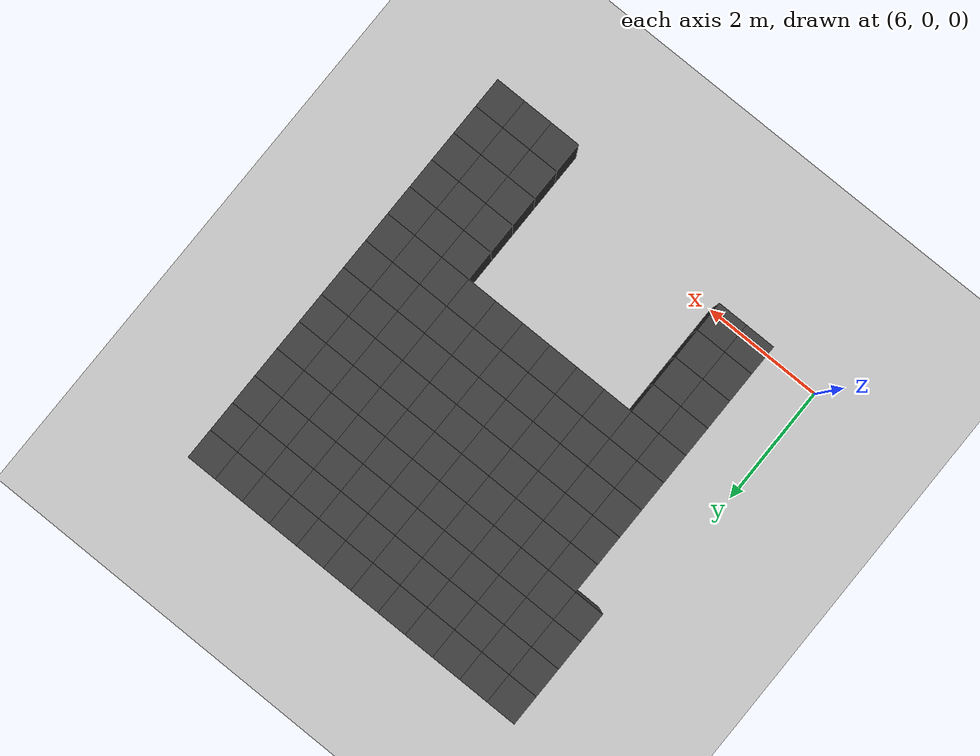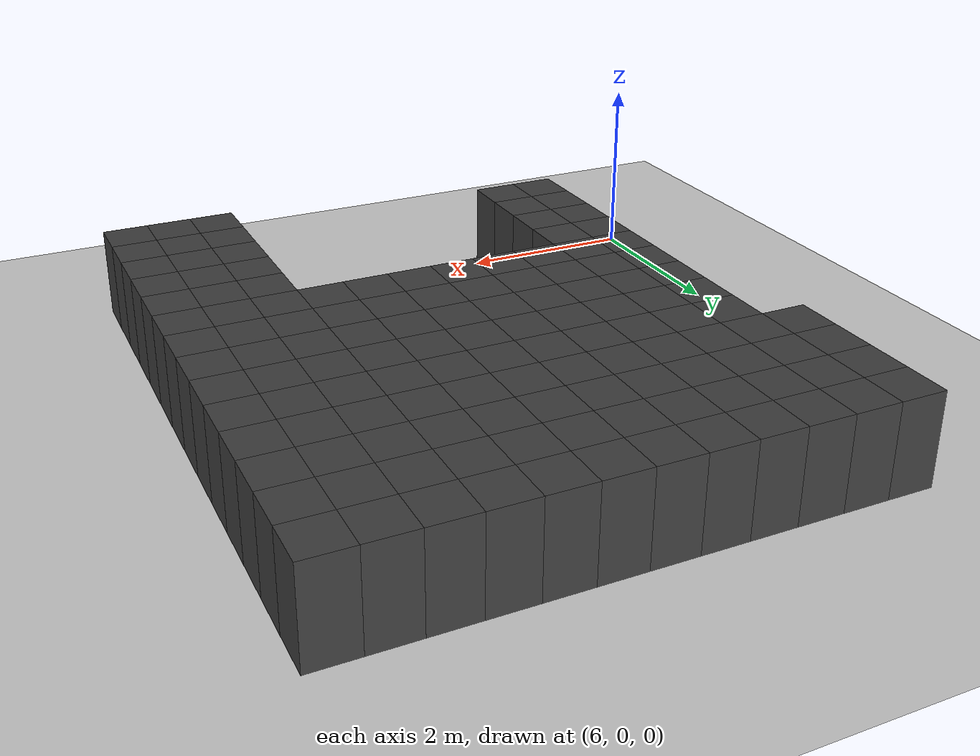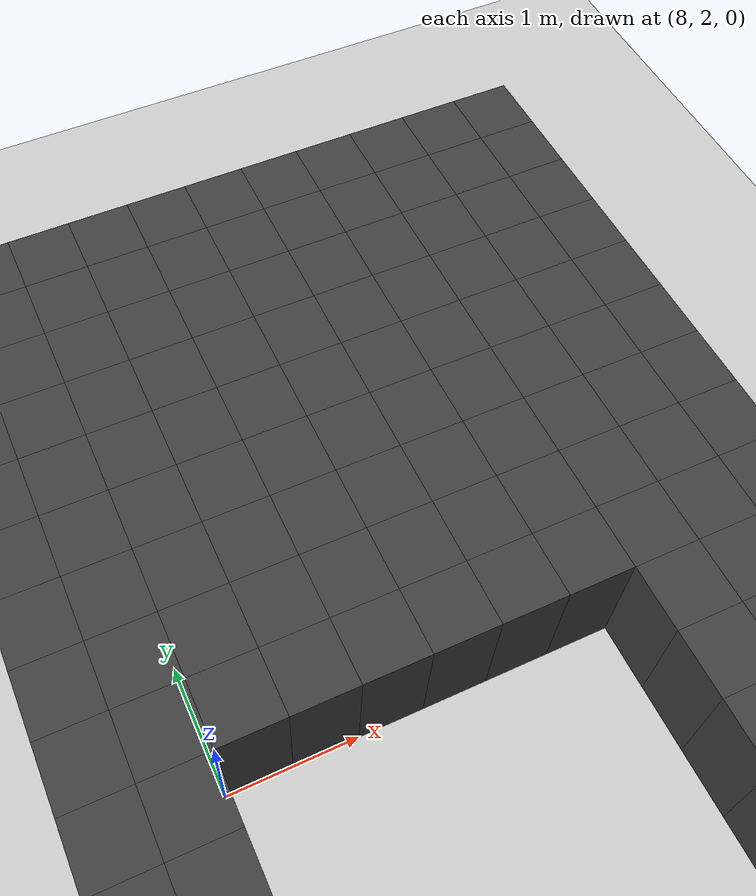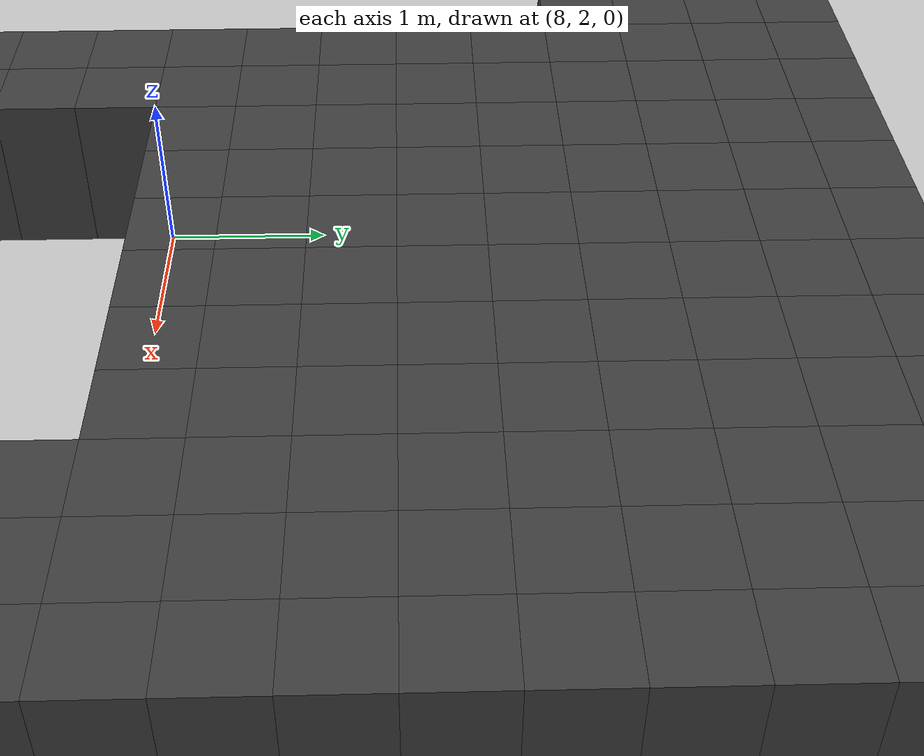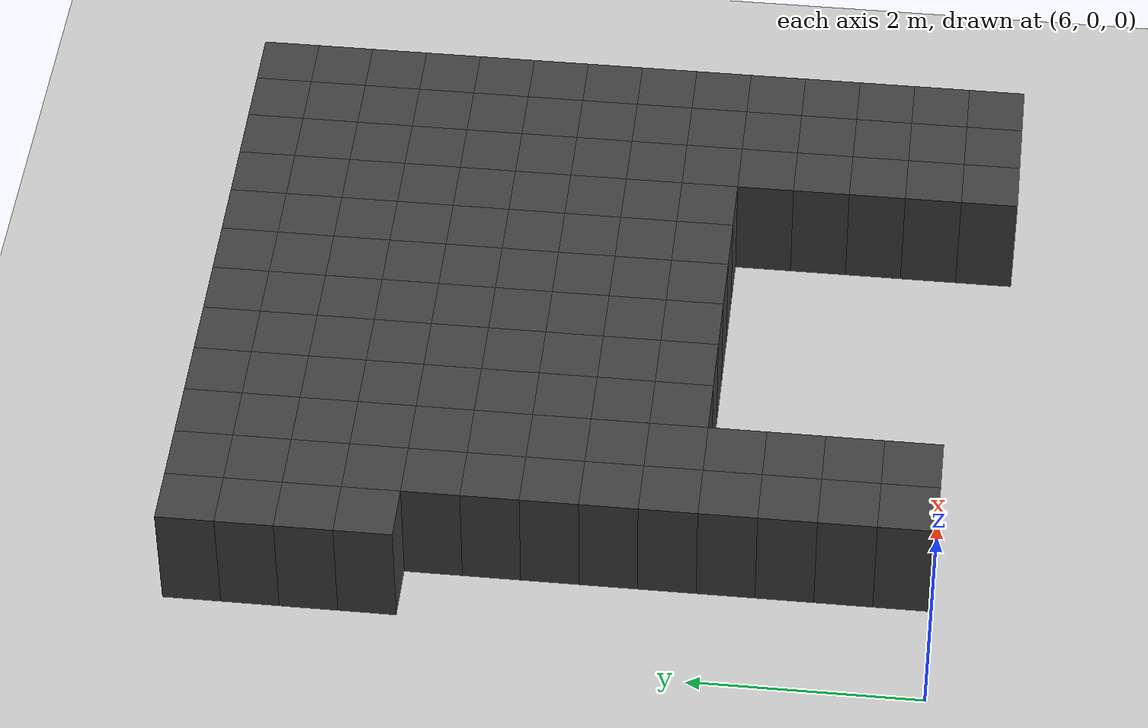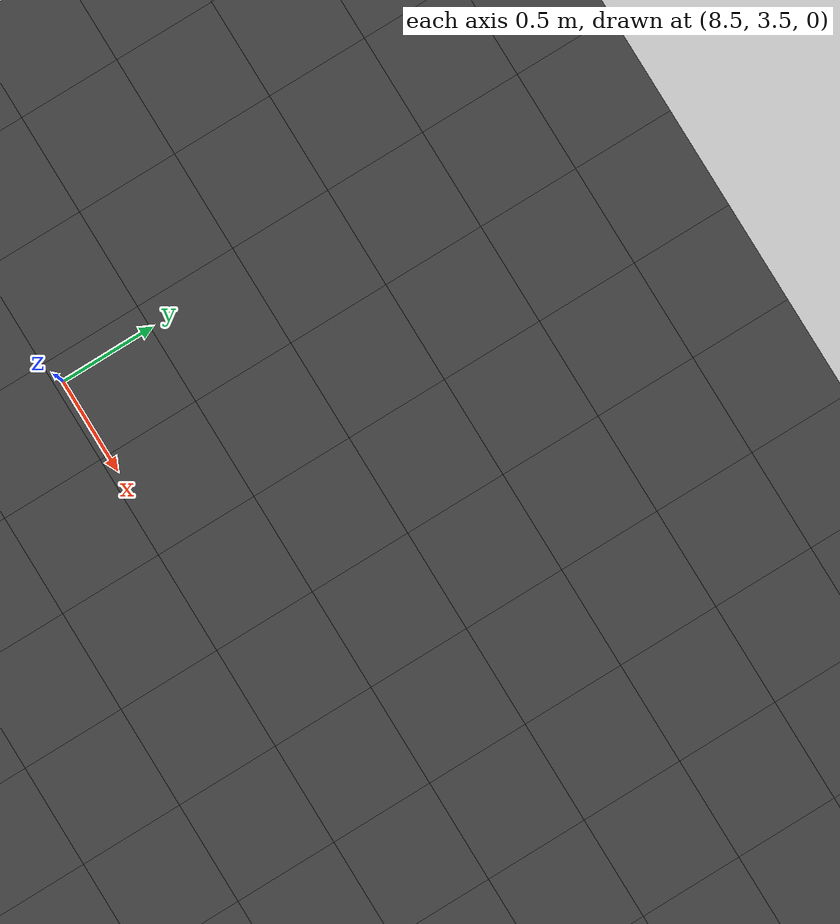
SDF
<sdf version="1.7">
 <world name="map_14495">
  <model name="ground_plane">
   <static>true</static>
   <link name="link">
    <collision name="collision">
     <geometry><plane><normal>0 0 1</normal><size>200 200</size></plane></geometry>
    </collision>
    <visual name="visual">
     <geometry><plane><normal>0 0 1</normal><size>200 200</size></plane></geometry>
     <material><ambient>0.8 0.8 0.8 1</ambient><diffuse>0.8 0.8 0.8 1</diffuse></material>
    </visual>
   </link>
  </model>
  <model name="maze_environment">
   <static>true</static>
   <link name="wall_487">
    <pose>6.750 6.250 0.500 0 0 0</pose>
    <collision name="col"><geometry><box><size>0.5 0.5 1.0</size></box></geometry></collision>
    <visual name="vis">
     <geometry><box><size>0.5 0.5 1.0</size></box></geometry>
     <material><ambient>0.15 0.15 0.15 1</ambient><diffuse>0.25 0.25 0.25 1</diffuse></material>
    </visual>
   </link>
   <link name="wall_488">
    <pose>7.250 6.250 0.500 0 0 0</pose>
    <collision name="col"><geometry><box><size>0.5 0.5 1.0</size></box></geometry></collision>
    <visual name="vis">
     <geometry><box><size>0.5 0.5 1.0</size></box></geometry>
     <material><ambient>0.15 0.15 0.15 1</ambient><diffuse>0.25 0.25 0.25 1</diffuse></material>
    </visual>
   </link>
   <link name="wall_489">
    <pose>7.750 6.250 0.500 0 0 0</pose>
    <collision name="col"><geometry><box><size>0.5 0.5 1.0</size></box></geometry></collision>
    <visual name="vis">
     <geometry><box><size>0.5 0.5 1.0</size></box></geometry>
     <material><ambient>0.15 0.15 0.15 1</ambient><diffuse>0.25 0.25 0.25 1</diffuse></material>
    </visual>
   </link>
   <link name="wall_490">
    <pose>8.250 6.250 0.500 0 0 0</pose>
    <collision name="col"><geometry><box><size>0.5 0.5 1.0</size></box></geometry></collision>
    <visual name="vis">
     <geometry><box><size>0.5 0.5 1.0</size></box></geometry>
     <material><ambient>0.15 0.15 0.15 1</ambient><diffuse>0.25 0.25 0.25 1</diffuse></material>
    </visual>
   </link>
   <link name="wall_491">
    <pose>8.750 6.250 0.500 0 0 0</pose>
    <collision name="col"><geometry><box><size>0.5 0.5 1.0</size></box></geometry></collision>
    <visual name="vis">
     <geometry><box><size>0.5 0.5 1.0</size></box></geometry>
     <material><ambient>0.15 0.15 0.15 1</ambient><diffuse>0.25 0.25 0.25 1</diffuse></material>
    </visual>
   </link>
   <link name="wall_492">
    <pose>9.250 6.250 0.500 0 0 0</pose>
    <collision name="col"><geometry><box><size>0.5 0.5 1.0</size></box></geometry></collision>
    <visual name="vis">
     <geometry><box><size>0.5 0.5 1.0</size></box></geometry>
     <material><ambient>0.15 0.15 0.15 1</ambient><diffuse>0.25 0.25 0.25 1</diffuse></material>
    </visual>
   </link>
   <link name="wall_493">
    <pose>9.750 6.250 0.500 0 0 0</pose>
    <collision name="col"><geometry><box><size>0.5 0.5 1.0</size></box></geometry></collision>
    <visual name="vis">
     <geometry><box><size>0.5 0.5 1.0</size></box></geometry>
     <material><ambient>0.15 0.15 0.15 1</ambient><diffuse>0.25 0.25 0.25 1</diffuse></material>
    </visual>
   </link>
   <link name="wall_494">
    <pose>10.250 6.250 0.500 0 0 0</pose>
    <collision name="col"><geometry><box><size>0.5 0.5 1.0</size></box></geometry></collision>
    <visual name="vis">
     <geometry><box><size>0.5 0.5 1.0</size></box></geometry>
     <material><ambient>0.15 0.15 0.15 1</ambient><diffuse>0.25 0.25 0.25 1</diffuse></material>
    </visual>
   </link>
   <link name="wall_495">
    <pose>10.750 6.250 0.500 0 0 0</pose>
    <collision name="col"><geometry><box><size>0.5 0.5 1.0</size></box></geometry></collision>
    <visual name="vis">
     <geometry><box><size>0.5 0.5 1.0</size></box></geometry>
     <material><ambient>0.15 0.15 0.15 1</ambient><diffuse>0.25 0.25 0.25 1</diffuse></material>
    </visual>
   </link>
   <link name="wall_496">
    <pose>11.250 6.250 0.500 0 0 0</pose>
    <collision name="col"><geometry><box><size>0.5 0.5 1.0</size></box></geometry></collision>
    <visual name="vis">
     <geometry><box><size>0.5 0.5 1.0</size></box></geometry>
     <material><ambient>0.15 0.15 0.15 1</ambient><diffuse>0.25 0.25 0.25 1</diffuse></material>
    </visual>
   </link>
   <link name="wall_497">
    <pose>11.750 6.250 0.500 0 0 0</pose>
    <collision name="col"><geometry><box><size>0.5 0.5 1.0</size></box></geometry></collision>
    <visual name="vis">
     <geometry><box><size>0.5 0.5 1.0</size></box></geometry>
     <material><ambient>0.15 0.15 0.15 1</ambient><diffuse>0.25 0.25 0.25 1</diffuse></material>
    </visual>
   </link>
   <link name="wall_498">
    <pose>12.250 6.250 0.500 0 0 0</pose>
    <collision name="col"><geometry><box><size>0.5 0.5 1.0</size></box></geometry></collision>
    <visual name="vis">
     <geometry><box><size>0.5 0.5 1.0</size></box></geometry>
     <material><ambient>0.15 0.15 0.15 1</ambient><diffuse>0.25 0.25 0.25 1</diffuse></material>
    </visual>
   </link>
   <link name="wall_517">
    <pose>6.750 5.750 0.500 0 0 0</pose>
    <collision name="col"><geometry><box><size>0.5 0.5 1.0</size></box></geometry></collision>
    <visual name="vis">
     <geometry><box><size>0.5 0.5 1.0</size></box></geometry>
     <material><ambient>0.15 0.15 0.15 1</ambient><diffuse>0.25 0.25 0.25 1</diffuse></material>
    </visual>
   </link>
   <link name="wall_518">
    <pose>7.250 5.750 0.500 0 0 0</pose>
    <collision name="col"><geometry><box><size>0.5 0.5 1.0</size></box></geometry></collision>
    <visual name="vis">
     <geometry><box><size>0.5 0.5 1.0</size></box></geometry>
     <material><ambient>0.15 0.15 0.15 1</ambient><diffuse>0.25 0.25 0.25 1</diffuse></material>
    </visual>
   </link>
   <link name="wall_519">
    <pose>7.750 5.750 0.500 0 0 0</pose>
    <collision name="col"><geometry><box><size>0.5 0.5 1.0</size></box></geometry></collision>
    <visual name="vis">
     <geometry><box><size>0.5 0.5 1.0</size></box></geometry>
     <material><ambient>0.15 0.15 0.15 1</ambient><diffuse>0.25 0.25 0.25 1</diffuse></material>
    </visual>
   </link>
   <link name="wall_520">
    <pose>8.250 5.750 0.500 0 0 0</pose>
    <collision name="col"><geometry><box><size>0.5 0.5 1.0</size></box></geometry></collision>
    <visual name="vis">
     <geometry><box><size>0.5 0.5 1.0</size></box></geometry>
     <material><ambient>0.15 0.15 0.15 1</ambient><diffuse>0.25 0.25 0.25 1</diffuse></material>
    </visual>
   </link>
   <link name="wall_521">
    <pose>8.750 5.750 0.500 0 0 0</pose>
    <collision name="col"><geometry><box><size>0.5 0.5 1.0</size></box></geometry></collision>
    <visual name="vis">
     <geometry><box><size>0.5 0.5 1.0</size></box></geometry>
     <material><ambient>0.15 0.15 0.15 1</ambient><diffuse>0.25 0.25 0.25 1</diffuse></material>
    </visual>
   </link>
   <link name="wall_522">
    <pose>9.250 5.750 0.500 0 0 0</pose>
    <collision name="col"><geometry><box><size>0.5 0.5 1.0</size></box></geometry></collision>
    <visual name="vis">
     <geometry><box><size>0.5 0.5 1.0</size></box></geometry>
     <material><ambient>0.15 0.15 0.15 1</ambient><diffuse>0.25 0.25 0.25 1</diffuse></material>
    </visual>
   </link>
   <link name="wall_523">
    <pose>9.750 5.750 0.500 0 0 0</pose>
    <collision name="col"><geometry><box><size>0.5 0.5 1.0</size></box></geometry></collision>
    <visual name="vis">
     <geometry><box><size>0.5 0.5 1.0</size></box></geometry>
     <material><ambient>0.15 0.15 0.15 1</ambient><diffuse>0.25 0.25 0.25 1</diffuse></material>
    </visual>
   </link>
   <link name="wall_524">
    <pose>10.250 5.750 0.500 0 0 0</pose>
    <collision name="col"><geometry><box><size>0.5 0.5 1.0</size></box></geometry></collision>
    <visual name="vis">
     <geometry><box><size>0.5 0.5 1.0</size></box></geometry>
     <material><ambient>0.15 0.15 0.15 1</ambient><diffuse>0.25 0.25 0.25 1</diffuse></material>
    </visual>
   </link>
   <link name="wall_525">
    <pose>10.750 5.750 0.500 0 0 0</pose>
    <collision name="col"><geometry><box><size>0.5 0.5 1.0</size></box></geometry></collision>
    <visual name="vis">
     <geometry><box><size>0.5 0.5 1.0</size></box></geometry>
     <material><ambient>0.15 0.15 0.15 1</ambient><diffuse>0.25 0.25 0.25 1</diffuse></material>
    </visual>
   </link>
   <link name="wall_526">
    <pose>11.250 5.750 0.500 0 0 0</pose>
    <collision name="col"><geometry><box><size>0.5 0.5 1.0</size></box></geometry></collision>
    <visual name="vis">
     <geometry><box><size>0.5 0.5 1.0</size></box></geometry>
     <material><ambient>0.15 0.15 0.15 1</ambient><diffuse>0.25 0.25 0.25 1</diffuse></material>
    </visual>
   </link>
   <link name="wall_527">
    <pose>11.750 5.750 0.500 0 0 0</pose>
    <collision name="col"><geometry><box><size>0.5 0.5 1.0</size></box></geometry></collision>
    <visual name="vis">
     <geometry><box><size>0.5 0.5 1.0</size></box></geometry>
     <material><ambient>0.15 0.15 0.15 1</ambient><diffuse>0.25 0.25 0.25 1</diffuse></material>
    </visual>
   </link>
   <link name="wall_528">
    <pose>12.250 5.750 0.500 0 0 0</pose>
    <collision name="col"><geometry><box><size>0.5 0.5 1.0</size></box></geometry></collision>
    <visual name="vis">
     <geometry><box><size>0.5 0.5 1.0</size></box></geometry>
     <material><ambient>0.15 0.15 0.15 1</ambient><diffuse>0.25 0.25 0.25 1</diffuse></material>
    </visual>
   </link>
   <link name="wall_553">
    <pose>6.750 5.250 0.500 0 0 0</pose>
    <collision name="col"><geometry><box><size>0.5 0.5 1.0</size></box></geometry></collision>
    <visual name="vis">
     <geometry><box><size>0.5 0.5 1.0</size></box></geometry>
     <material><ambient>0.15 0.15 0.15 1</ambient><diffuse>0.25 0.25 0.25 1</diffuse></material>
    </visual>
   </link>
   <link name="wall_554">
    <pose>7.250 5.250 0.500 0 0 0</pose>
    <collision name="col"><geometry><box><size>0.5 0.5 1.0</size></box></geometry></collision>
    <visual name="vis">
     <geometry><box><size>0.5 0.5 1.0</size></box></geometry>
     <material><ambient>0.15 0.15 0.15 1</ambient><diffuse>0.25 0.25 0.25 1</diffuse></material>
    </visual>
   </link>
   <link name="wall_555">
    <pose>7.750 5.250 0.500 0 0 0</pose>
    <collision name="col"><geometry><box><size>0.5 0.5 1.0</size></box></geometry></collision>
    <visual name="vis">
     <geometry><box><size>0.5 0.5 1.0</size></box></geometry>
     <material><ambient>0.15 0.15 0.15 1</ambient><diffuse>0.25 0.25 0.25 1</diffuse></material>
    </visual>
   </link>
   <link name="wall_556">
    <pose>8.250 5.250 0.500 0 0 0</pose>
    <collision name="col"><geometry><box><size>0.5 0.5 1.0</size></box></geometry></collision>
    <visual name="vis">
     <geometry><box><size>0.5 0.5 1.0</size></box></geometry>
     <material><ambient>0.15 0.15 0.15 1</ambient><diffuse>0.25 0.25 0.25 1</diffuse></material>
    </visual>
   </link>
   <link name="wall_557">
    <pose>8.750 5.250 0.500 0 0 0</pose>
    <collision name="col"><geometry><box><size>0.5 0.5 1.0</size></box></geometry></collision>
    <visual name="vis">
     <geometry><box><size>0.5 0.5 1.0</size></box></geometry>
     <material><ambient>0.15 0.15 0.15 1</ambient><diffuse>0.25 0.25 0.25 1</diffuse></material>
    </visual>
   </link>
   <link name="wall_558">
    <pose>9.250 5.250 0.500 0 0 0</pose>
    <collision name="col"><geometry><box><size>0.5 0.5 1.0</size></box></geometry></collision>
    <visual name="vis">
     <geometry><box><size>0.5 0.5 1.0</size></box></geometry>
     <material><ambient>0.15 0.15 0.15 1</ambient><diffuse>0.25 0.25 0.25 1</diffuse></material>
    </visual>
   </link>
   <link name="wall_559">
    <pose>9.750 5.250 0.500 0 0 0</pose>
    <collision name="col"><geometry><box><size>0.5 0.5 1.0</size></box></geometry></collision>
    <visual name="vis">
     <geometry><box><size>0.5 0.5 1.0</size></box></geometry>
     <material><ambient>0.15 0.15 0.15 1</ambient><diffuse>0.25 0.25 0.25 1</diffuse></material>
    </visual>
   </link>
   <link name="wall_560">
    <pose>10.250 5.250 0.500 0 0 0</pose>
    <collision name="col"><geometry><box><size>0.5 0.5 1.0</size></box></geometry></collision>
    <visual name="vis">
     <geometry><box><size>0.5 0.5 1.0</size></box></geometry>
     <material><ambient>0.15 0.15 0.15 1</ambient><diffuse>0.25 0.25 0.25 1</diffuse></material>
    </visual>
   </link>
   <link name="wall_561">
    <pose>10.750 5.250 0.500 0 0 0</pose>
    <collision name="col"><geometry><box><size>0.5 0.5 1.0</size></box></geometry></collision>
    <visual name="vis">
     <geometry><box><size>0.5 0.5 1.0</size></box></geometry>
     <material><ambient>0.15 0.15 0.15 1</ambient><diffuse>0.25 0.25 0.25 1</diffuse></material>
    </visual>
   </link>
   <link name="wall_562">
    <pose>11.250 5.250 0.500 0 0 0</pose>
    <collision name="col"><geometry><box><size>0.5 0.5 1.0</size></box></geometry></collision>
    <visual name="vis">
     <geometry><box><size>0.5 0.5 1.0</size></box></geometry>
     <material><ambient>0.15 0.15 0.15 1</ambient><diffuse>0.25 0.25 0.25 1</diffuse></material>
    </visual>
   </link>
   <link name="wall_563">
    <pose>11.750 5.250 0.500 0 0 0</pose>
    <collision name="col"><geometry><box><size>0.5 0.5 1.0</size></box></geometry></collision>
    <visual name="vis">
     <geometry><box><size>0.5 0.5 1.0</size></box></geometry>
     <material><ambient>0.15 0.15 0.15 1</ambient><diffuse>0.25 0.25 0.25 1</diffuse></material>
    </visual>
   </link>
   <link name="wall_564">
    <pose>12.250 5.250 0.500 0 0 0</pose>
    <collision name="col"><geometry><box><size>0.5 0.5 1.0</size></box></geometry></collision>
    <visual name="vis">
     <geometry><box><size>0.5 0.5 1.0</size></box></geometry>
     <material><ambient>0.15 0.15 0.15 1</ambient><diffuse>0.25 0.25 0.25 1</diffuse></material>
    </visual>
   </link>
   <link name="wall_586">
    <pose>6.750 4.750 0.500 0 0 0</pose>
    <collision name="col"><geometry><box><size>0.5 0.5 1.0</size></box></geometry></collision>
    <visual name="vis">
     <geometry><box><size>0.5 0.5 1.0</size></box></geometry>
     <material><ambient>0.15 0.15 0.15 1</ambient><diffuse>0.25 0.25 0.25 1</diffuse></material>
    </visual>
   </link>
   <link name="wall_587">
    <pose>7.250 4.750 0.500 0 0 0</pose>
    <collision name="col"><geometry><box><size>0.5 0.5 1.0</size></box></geometry></collision>
    <visual name="vis">
     <geometry><box><size>0.5 0.5 1.0</size></box></geometry>
     <material><ambient>0.15 0.15 0.15 1</ambient><diffuse>0.25 0.25 0.25 1</diffuse></material>
    </visual>
   </link>
   <link name="wall_588">
    <pose>7.750 4.750 0.500 0 0 0</pose>
    <collision name="col"><geometry><box><size>0.5 0.5 1.0</size></box></geometry></collision>
    <visual name="vis">
     <geometry><box><size>0.5 0.5 1.0</size></box></geometry>
     <material><ambient>0.15 0.15 0.15 1</ambient><diffuse>0.25 0.25 0.25 1</diffuse></material>
    </visual>
   </link>
   <link name="wall_589">
    <pose>8.250 4.750 0.500 0 0 0</pose>
    <collision name="col"><geometry><box><size>0.5 0.5 1.0</size></box></geometry></collision>
    <visual name="vis">
     <geometry><box><size>0.5 0.5 1.0</size></box></geometry>
     <material><ambient>0.15 0.15 0.15 1</ambient><diffuse>0.25 0.25 0.25 1</diffuse></material>
    </visual>
   </link>
   <link name="wall_590">
    <pose>8.750 4.750 0.500 0 0 0</pose>
    <collision name="col"><geometry><box><size>0.5 0.5 1.0</size></box></geometry></collision>
    <visual name="vis">
     <geometry><box><size>0.5 0.5 1.0</size></box></geometry>
     <material><ambient>0.15 0.15 0.15 1</ambient><diffuse>0.25 0.25 0.25 1</diffuse></material>
    </visual>
   </link>
   <link name="wall_591">
    <pose>9.250 4.750 0.500 0 0 0</pose>
    <collision name="col"><geometry><box><size>0.5 0.5 1.0</size></box></geometry></collision>
    <visual name="vis">
     <geometry><box><size>0.5 0.5 1.0</size></box></geometry>
     <material><ambient>0.15 0.15 0.15 1</ambient><diffuse>0.25 0.25 0.25 1</diffuse></material>
    </visual>
   </link>
   <link name="wall_592">
    <pose>9.750 4.750 0.500 0 0 0</pose>
    <collision name="col"><geometry><box><size>0.5 0.5 1.0</size></box></geometry></collision>
    <visual name="vis">
     <geometry><box><size>0.5 0.5 1.0</size></box></geometry>
     <material><ambient>0.15 0.15 0.15 1</ambient><diffuse>0.25 0.25 0.25 1</diffuse></material>
    </visual>
   </link>
   <link name="wall_593">
    <pose>10.250 4.750 0.500 0 0 0</pose>
    <collision name="col"><geometry><box><size>0.5 0.5 1.0</size></box></geometry></collision>
    <visual name="vis">
     <geometry><box><size>0.5 0.5 1.0</size></box></geometry>
     <material><ambient>0.15 0.15 0.15 1</ambient><diffuse>0.25 0.25 0.25 1</diffuse></material>
    </visual>
   </link>
   <link name="wall_594">
    <pose>10.750 4.750 0.500 0 0 0</pose>
    <collision name="col"><geometry><box><size>0.5 0.5 1.0</size></box></geometry></collision>
    <visual name="vis">
     <geometry><box><size>0.5 0.5 1.0</size></box></geometry>
     <material><ambient>0.15 0.15 0.15 1</ambient><diffuse>0.25 0.25 0.25 1</diffuse></material>
    </visual>
   </link>
   <link name="wall_595">
    <pose>11.250 4.750 0.500 0 0 0</pose>
    <collision name="col"><geometry><box><size>0.5 0.5 1.0</size></box></geometry></collision>
    <visual name="vis">
     <geometry><box><size>0.5 0.5 1.0</size></box></geometry>
     <material><ambient>0.15 0.15 0.15 1</ambient><diffuse>0.25 0.25 0.25 1</diffuse></material>
    </visual>
   </link>
   <link name="wall_596">
    <pose>11.750 4.750 0.500 0 0 0</pose>
    <collision name="col"><geometry><box><size>0.5 0.5 1.0</size></box></geometry></collision>
    <visual name="vis">
     <geometry><box><size>0.5 0.5 1.0</size></box></geometry>
     <material><ambient>0.15 0.15 0.15 1</ambient><diffuse>0.25 0.25 0.25 1</diffuse></material>
    </visual>
   </link>
   <link name="wall_597">
    <pose>12.250 4.750 0.500 0 0 0</pose>
    <collision name="col"><geometry><box><size>0.5 0.5 1.0</size></box></geometry></collision>
    <visual name="vis">
     <geometry><box><size>0.5 0.5 1.0</size></box></geometry>
     <material><ambient>0.15 0.15 0.15 1</ambient><diffuse>0.25 0.25 0.25 1</diffuse></material>
    </visual>
   </link>
   <link name="wall_623">
    <pose>7.250 4.250 0.500 0 0 0</pose>
    <collision name="col"><geometry><box><size>0.5 0.5 1.0</size></box></geometry></collision>
    <visual name="vis">
     <geometry><box><size>0.5 0.5 1.0</size></box></geometry>
     <material><ambient>0.15 0.15 0.15 1</ambient><diffuse>0.25 0.25 0.25 1</diffuse></material>
    </visual>
   </link>
   <link name="wall_624">
    <pose>7.750 4.250 0.500 0 0 0</pose>
    <collision name="col"><geometry><box><size>0.5 0.5 1.0</size></box></geometry></collision>
    <visual name="vis">
     <geometry><box><size>0.5 0.5 1.0</size></box></geometry>
     <material><ambient>0.15 0.15 0.15 1</ambient><diffuse>0.25 0.25 0.25 1</diffuse></material>
    </visual>
   </link>
   <link name="wall_625">
    <pose>8.250 4.250 0.500 0 0 0</pose>
    <collision name="col"><geometry><box><size>0.5 0.5 1.0</size></box></geometry></collision>
    <visual name="vis">
     <geometry><box><size>0.5 0.5 1.0</size></box></geometry>
     <material><ambient>0.15 0.15 0.15 1</ambient><diffuse>0.25 0.25 0.25 1</diffuse></material>
    </visual>
   </link>
   <link name="wall_626">
    <pose>8.750 4.250 0.500 0 0 0</pose>
    <collision name="col"><geometry><box><size>0.5 0.5 1.0</size></box></geometry></collision>
    <visual name="vis">
     <geometry><box><size>0.5 0.5 1.0</size></box></geometry>
     <material><ambient>0.15 0.15 0.15 1</ambient><diffuse>0.25 0.25 0.25 1</diffuse></material>
    </visual>
   </link>
   <link name="wall_627">
    <pose>9.250 4.250 0.500 0 0 0</pose>
    <collision name="col"><geometry><box><size>0.5 0.5 1.0</size></box></geometry></collision>
    <visual name="vis">
     <geometry><box><size>0.5 0.5 1.0</size></box></geometry>
     <material><ambient>0.15 0.15 0.15 1</ambient><diffuse>0.25 0.25 0.25 1</diffuse></material>
    </visual>
   </link>
   <link name="wall_628">
    <pose>9.750 4.250 0.500 0 0 0</pose>
    <collision name="col"><geometry><box><size>0.5 0.5 1.0</size></box></geometry></collision>
    <visual name="vis">
     <geometry><box><size>0.5 0.5 1.0</size></box></geometry>
     <material><ambient>0.15 0.15 0.15 1</ambient><diffuse>0.25 0.25 0.25 1</diffuse></material>
    </visual>
   </link>
   <link name="wall_629">
    <pose>10.250 4.250 0.500 0 0 0</pose>
    <collision name="col"><geometry><box><size>0.5 0.5 1.0</size></box></geometry></collision>
    <visual name="vis">
     <geometry><box><size>0.5 0.5 1.0</size></box></geometry>
     <material><ambient>0.15 0.15 0.15 1</ambient><diffuse>0.25 0.25 0.25 1</diffuse></material>
    </visual>
   </link>
   <link name="wall_630">
    <pose>10.750 4.250 0.500 0 0 0</pose>
    <collision name="col"><geometry><box><size>0.5 0.5 1.0</size></box></geometry></collision>
    <visual name="vis">
     <geometry><box><size>0.5 0.5 1.0</size></box></geometry>
     <material><ambient>0.15 0.15 0.15 1</ambient><diffuse>0.25 0.25 0.25 1</diffuse></material>
    </visual>
   </link>
   <link name="wall_631">
    <pose>11.250 4.250 0.500 0 0 0</pose>
    <collision name="col"><geometry><box><size>0.5 0.5 1.0</size></box></geometry></collision>
    <visual name="vis">
     <geometry><box><size>0.5 0.5 1.0</size></box></geometry>
     <material><ambient>0.15 0.15 0.15 1</ambient><diffuse>0.25 0.25 0.25 1</diffuse></material>
    </visual>
   </link>
   <link name="wall_632">
    <pose>11.750 4.250 0.500 0 0 0</pose>
    <collision name="col"><geometry><box><size>0.5 0.5 1.0</size></box></geometry></collision>
    <visual name="vis">
     <geometry><box><size>0.5 0.5 1.0</size></box></geometry>
     <material><ambient>0.15 0.15 0.15 1</ambient><diffuse>0.25 0.25 0.25 1</diffuse></material>
    </visual>
   </link>
   <link name="wall_633">
    <pose>12.250 4.250 0.500 0 0 0</pose>
    <collision name="col"><geometry><box><size>0.5 0.5 1.0</size></box></geometry></collision>
    <visual name="vis">
     <geometry><box><size>0.5 0.5 1.0</size></box></geometry>
     <material><ambient>0.15 0.15 0.15 1</ambient><diffuse>0.25 0.25 0.25 1</diffuse></material>
    </visual>
   </link>
   <link name="wall_660">
    <pose>7.250 3.750 0.500 0 0 0</pose>
    <collision name="col"><geometry><box><size>0.5 0.5 1.0</size></box></geometry></collision>
    <visual name="vis">
     <geometry><box><size>0.5 0.5 1.0</size></box></geometry>
     <material><ambient>0.15 0.15 0.15 1</ambient><diffuse>0.25 0.25 0.25 1</diffuse></material>
    </visual>
   </link>
   <link name="wall_661">
    <pose>7.750 3.750 0.500 0 0 0</pose>
    <collision name="col"><geometry><box><size>0.5 0.5 1.0</size></box></geometry></collision>
    <visual name="vis">
     <geometry><box><size>0.5 0.5 1.0</size></box></geometry>
     <material><ambient>0.15 0.15 0.15 1</ambient><diffuse>0.25 0.25 0.25 1</diffuse></material>
    </visual>
   </link>
   <link name="wall_662">
    <pose>8.250 3.750 0.500 0 0 0</pose>
    <collision name="col"><geometry><box><size>0.5 0.5 1.0</size></box></geometry></collision>
    <visual name="vis">
     <geometry><box><size>0.5 0.5 1.0</size></box></geometry>
     <material><ambient>0.15 0.15 0.15 1</ambient><diffuse>0.25 0.25 0.25 1</diffuse></material>
    </visual>
   </link>
   <link name="wall_663">
    <pose>8.750 3.750 0.500 0 0 0</pose>
    <collision name="col"><geometry><box><size>0.5 0.5 1.0</size></box></geometry></collision>
    <visual name="vis">
     <geometry><box><size>0.5 0.5 1.0</size></box></geometry>
     <material><ambient>0.15 0.15 0.15 1</ambient><diffuse>0.25 0.25 0.25 1</diffuse></material>
    </visual>
   </link>
   <link name="wall_664">
    <pose>9.250 3.750 0.500 0 0 0</pose>
    <collision name="col"><geometry><box><size>0.5 0.5 1.0</size></box></geometry></collision>
    <visual name="vis">
     <geometry><box><size>0.5 0.5 1.0</size></box></geometry>
     <material><ambient>0.15 0.15 0.15 1</ambient><diffuse>0.25 0.25 0.25 1</diffuse></material>
    </visual>
   </link>
   <link name="wall_665">
    <pose>9.750 3.750 0.500 0 0 0</pose>
    <collision name="col"><geometry><box><size>0.5 0.5 1.0</size></box></geometry></collision>
    <visual name="vis">
     <geometry><box><size>0.5 0.5 1.0</size></box></geometry>
     <material><ambient>0.15 0.15 0.15 1</ambient><diffuse>0.25 0.25 0.25 1</diffuse></material>
    </visual>
   </link>
   <link name="wall_666">
    <pose>10.250 3.750 0.500 0 0 0</pose>
    <collision name="col"><geometry><box><size>0.5 0.5 1.0</size></box></geometry></collision>
    <visual name="vis">
     <geometry><box><size>0.5 0.5 1.0</size></box></geometry>
     <material><ambient>0.15 0.15 0.15 1</ambient><diffuse>0.25 0.25 0.25 1</diffuse></material>
    </visual>
   </link>
   <link name="wall_667">
    <pose>10.750 3.750 0.500 0 0 0</pose>
    <collision name="col"><geometry><box><size>0.5 0.5 1.0</size></box></geometry></collision>
    <visual name="vis">
     <geometry><box><size>0.5 0.5 1.0</size></box></geometry>
     <material><ambient>0.15 0.15 0.15 1</ambient><diffuse>0.25 0.25 0.25 1</diffuse></material>
    </visual>
   </link>
   <link name="wall_668">
    <pose>11.250 3.750 0.500 0 0 0</pose>
    <collision name="col"><geometry><box><size>0.5 0.5 1.0</size></box></geometry></collision>
    <visual name="vis">
     <geometry><box><size>0.5 0.5 1.0</size></box></geometry>
     <material><ambient>0.15 0.15 0.15 1</ambient><diffuse>0.25 0.25 0.25 1</diffuse></material>
    </visual>
   </link>
   <link name="wall_669">
    <pose>11.750 3.750 0.500 0 0 0</pose>
    <collision name="col"><geometry><box><size>0.5 0.5 1.0</size></box></geometry></collision>
    <visual name="vis">
     <geometry><box><size>0.5 0.5 1.0</size></box></geometry>
     <material><ambient>0.15 0.15 0.15 1</ambient><diffuse>0.25 0.25 0.25 1</diffuse></material>
    </visual>
   </link>
   <link name="wall_670">
    <pose>12.250 3.750 0.500 0 0 0</pose>
    <collision name="col"><geometry><box><size>0.5 0.5 1.0</size></box></geometry></collision>
    <visual name="vis">
     <geometry><box><size>0.5 0.5 1.0</size></box></geometry>
     <material><ambient>0.15 0.15 0.15 1</ambient><diffuse>0.25 0.25 0.25 1</diffuse></material>
    </visual>
   </link>
   <link name="wall_699">
    <pose>7.250 3.250 0.500 0 0 0</pose>
    <collision name="col"><geometry><box><size>0.5 0.5 1.0</size></box></geometry></collision>
    <visual name="vis">
     <geometry><box><size>0.5 0.5 1.0</size></box></geometry>
     <material><ambient>0.15 0.15 0.15 1</ambient><diffuse>0.25 0.25 0.25 1</diffuse></material>
    </visual>
   </link>
   <link name="wall_700">
    <pose>7.750 3.250 0.500 0 0 0</pose>
    <collision name="col"><geometry><box><size>0.5 0.5 1.0</size></box></geometry></collision>
    <visual name="vis">
     <geometry><box><size>0.5 0.5 1.0</size></box></geometry>
     <material><ambient>0.15 0.15 0.15 1</ambient><diffuse>0.25 0.25 0.25 1</diffuse></material>
    </visual>
   </link>
   <link name="wall_701">
    <pose>8.250 3.250 0.500 0 0 0</pose>
    <collision name="col"><geometry><box><size>0.5 0.5 1.0</size></box></geometry></collision>
    <visual name="vis">
     <geometry><box><size>0.5 0.5 1.0</size></box></geometry>
     <material><ambient>0.15 0.15 0.15 1</ambient><diffuse>0.25 0.25 0.25 1</diffuse></material>
    </visual>
   </link>
   <link name="wall_702">
    <pose>8.750 3.250 0.500 0 0 0</pose>
    <collision name="col"><geometry><box><size>0.5 0.5 1.0</size></box></geometry></collision>
    <visual name="vis">
     <geometry><box><size>0.5 0.5 1.0</size></box></geometry>
     <material><ambient>0.15 0.15 0.15 1</ambient><diffuse>0.25 0.25 0.25 1</diffuse></material>
    </visual>
   </link>
   <link name="wall_703">
    <pose>9.250 3.250 0.500 0 0 0</pose>
    <collision name="col"><geometry><box><size>0.5 0.5 1.0</size></box></geometry></collision>
    <visual name="vis">
     <geometry><box><size>0.5 0.5 1.0</size></box></geometry>
     <material><ambient>0.15 0.15 0.15 1</ambient><diffuse>0.25 0.25 0.25 1</diffuse></material>
    </visual>
   </link>
   <link name="wall_704">
    <pose>9.750 3.250 0.500 0 0 0</pose>
    <collision name="col"><geometry><box><size>0.5 0.5 1.0</size></box></geometry></collision>
    <visual name="vis">
     <geometry><box><size>0.5 0.5 1.0</size></box></geometry>
     <material><ambient>0.15 0.15 0.15 1</ambient><diffuse>0.25 0.25 0.25 1</diffuse></material>
    </visual>
   </link>
   <link name="wall_705">
    <pose>10.250 3.250 0.500 0 0 0</pose>
    <collision name="col"><geometry><box><size>0.5 0.5 1.0</size></box></geometry></collision>
    <visual name="vis">
     <geometry><box><size>0.5 0.5 1.0</size></box></geometry>
     <material><ambient>0.15 0.15 0.15 1</ambient><diffuse>0.25 0.25 0.25 1</diffuse></material>
    </visual>
   </link>
   <link name="wall_706">
    <pose>10.750 3.250 0.500 0 0 0</pose>
    <collision name="col"><geometry><box><size>0.5 0.5 1.0</size></box></geometry></collision>
    <visual name="vis">
     <geometry><box><size>0.5 0.5 1.0</size></box></geometry>
     <material><ambient>0.15 0.15 0.15 1</ambient><diffuse>0.25 0.25 0.25 1</diffuse></material>
    </visual>
   </link>
   <link name="wall_707">
    <pose>11.250 3.250 0.500 0 0 0</pose>
    <collision name="col"><geometry><box><size>0.5 0.5 1.0</size></box></geometry></collision>
    <visual name="vis">
     <geometry><box><size>0.5 0.5 1.0</size></box></geometry>
     <material><ambient>0.15 0.15 0.15 1</ambient><diffuse>0.25 0.25 0.25 1</diffuse></material>
    </visual>
   </link>
   <link name="wall_708">
    <pose>11.750 3.250 0.500 0 0 0</pose>
    <collision name="col"><geometry><box><size>0.5 0.5 1.0</size></box></geometry></collision>
    <visual name="vis">
     <geometry><box><size>0.5 0.5 1.0</size></box></geometry>
     <material><ambient>0.15 0.15 0.15 1</ambient><diffuse>0.25 0.25 0.25 1</diffuse></material>
    </visual>
   </link>
   <link name="wall_709">
    <pose>12.250 3.250 0.500 0 0 0</pose>
    <collision name="col"><geometry><box><size>0.5 0.5 1.0</size></box></geometry></collision>
    <visual name="vis">
     <geometry><box><size>0.5 0.5 1.0</size></box></geometry>
     <material><ambient>0.15 0.15 0.15 1</ambient><diffuse>0.25 0.25 0.25 1</diffuse></material>
    </visual>
   </link>
   <link name="wall_743">
    <pose>7.250 2.750 0.500 0 0 0</pose>
    <collision name="col"><geometry><box><size>0.5 0.5 1.0</size></box></geometry></collision>
    <visual name="vis">
     <geometry><box><size>0.5 0.5 1.0</size></box></geometry>
     <material><ambient>0.15 0.15 0.15 1</ambient><diffuse>0.25 0.25 0.25 1</diffuse></material>
    </visual>
   </link>
   <link name="wall_744">
    <pose>7.750 2.750 0.500 0 0 0</pose>
    <collision name="col"><geometry><box><size>0.5 0.5 1.0</size></box></geometry></collision>
    <visual name="vis">
     <geometry><box><size>0.5 0.5 1.0</size></box></geometry>
     <material><ambient>0.15 0.15 0.15 1</ambient><diffuse>0.25 0.25 0.25 1</diffuse></material>
    </visual>
   </link>
   <link name="wall_745">
    <pose>8.250 2.750 0.500 0 0 0</pose>
    <collision name="col"><geometry><box><size>0.5 0.5 1.0</size></box></geometry></collision>
    <visual name="vis">
     <geometry><box><size>0.5 0.5 1.0</size></box></geometry>
     <material><ambient>0.15 0.15 0.15 1</ambient><diffuse>0.25 0.25 0.25 1</diffuse></material>
    </visual>
   </link>
   <link name="wall_746">
    <pose>8.750 2.750 0.500 0 0 0</pose>
    <collision name="col"><geometry><box><size>0.5 0.5 1.0</size></box></geometry></collision>
    <visual name="vis">
     <geometry><box><size>0.5 0.5 1.0</size></box></geometry>
     <material><ambient>0.15 0.15 0.15 1</ambient><diffuse>0.25 0.25 0.25 1</diffuse></material>
    </visual>
   </link>
   <link name="wall_747">
    <pose>9.250 2.750 0.500 0 0 0</pose>
    <collision name="col"><geometry><box><size>0.5 0.5 1.0</size></box></geometry></collision>
    <visual name="vis">
     <geometry><box><size>0.5 0.5 1.0</size></box></geometry>
     <material><ambient>0.15 0.15 0.15 1</ambient><diffuse>0.25 0.25 0.25 1</diffuse></material>
    </visual>
   </link>
   <link name="wall_748">
    <pose>9.750 2.750 0.500 0 0 0</pose>
    <collision name="col"><geometry><box><size>0.5 0.5 1.0</size></box></geometry></collision>
    <visual name="vis">
     <geometry><box><size>0.5 0.5 1.0</size></box></geometry>
     <material><ambient>0.15 0.15 0.15 1</ambient><diffuse>0.25 0.25 0.25 1</diffuse></material>
    </visual>
   </link>
   <link name="wall_749">
    <pose>10.250 2.750 0.500 0 0 0</pose>
    <collision name="col"><geometry><box><size>0.5 0.5 1.0</size></box></geometry></collision>
    <visual name="vis">
     <geometry><box><size>0.5 0.5 1.0</size></box></geometry>
     <material><ambient>0.15 0.15 0.15 1</ambient><diffuse>0.25 0.25 0.25 1</diffuse></material>
    </visual>
   </link>
   <link name="wall_750">
    <pose>10.750 2.750 0.500 0 0 0</pose>
    <collision name="col"><geometry><box><size>0.5 0.5 1.0</size></box></geometry></collision>
    <visual name="vis">
     <geometry><box><size>0.5 0.5 1.0</size></box></geometry>
     <material><ambient>0.15 0.15 0.15 1</ambient><diffuse>0.25 0.25 0.25 1</diffuse></material>
    </visual>
   </link>
   <link name="wall_751">
    <pose>11.250 2.750 0.500 0 0 0</pose>
    <collision name="col"><geometry><box><size>0.5 0.5 1.0</size></box></geometry></collision>
    <visual name="vis">
     <geometry><box><size>0.5 0.5 1.0</size></box></geometry>
     <material><ambient>0.15 0.15 0.15 1</ambient><diffuse>0.25 0.25 0.25 1</diffuse></material>
    </visual>
   </link>
   <link name="wall_752">
    <pose>11.750 2.750 0.500 0 0 0</pose>
    <collision name="col"><geometry><box><size>0.5 0.5 1.0</size></box></geometry></collision>
    <visual name="vis">
     <geometry><box><size>0.5 0.5 1.0</size></box></geometry>
     <material><ambient>0.15 0.15 0.15 1</ambient><diffuse>0.25 0.25 0.25 1</diffuse></material>
    </visual>
   </link>
   <link name="wall_753">
    <pose>12.250 2.750 0.500 0 0 0</pose>
    <collision name="col"><geometry><box><size>0.5 0.5 1.0</size></box></geometry></collision>
    <visual name="vis">
     <geometry><box><size>0.5 0.5 1.0</size></box></geometry>
     <material><ambient>0.15 0.15 0.15 1</ambient><diffuse>0.25 0.25 0.25 1</diffuse></material>
    </visual>
   </link>
   <link name="wall_787">
    <pose>7.250 2.250 0.500 0 0 0</pose>
    <collision name="col"><geometry><box><size>0.5 0.5 1.0</size></box></geometry></collision>
    <visual name="vis">
     <geometry><box><size>0.5 0.5 1.0</size></box></geometry>
     <material><ambient>0.15 0.15 0.15 1</ambient><diffuse>0.25 0.25 0.25 1</diffuse></material>
    </visual>
   </link>
   <link name="wall_788">
    <pose>7.750 2.250 0.500 0 0 0</pose>
    <collision name="col"><geometry><box><size>0.5 0.5 1.0</size></box></geometry></collision>
    <visual name="vis">
     <geometry><box><size>0.5 0.5 1.0</size></box></geometry>
     <material><ambient>0.15 0.15 0.15 1</ambient><diffuse>0.25 0.25 0.25 1</diffuse></material>
    </visual>
   </link>
   <link name="wall_789">
    <pose>8.250 2.250 0.500 0 0 0</pose>
    <collision name="col"><geometry><box><size>0.5 0.5 1.0</size></box></geometry></collision>
    <visual name="vis">
     <geometry><box><size>0.5 0.5 1.0</size></box></geometry>
     <material><ambient>0.15 0.15 0.15 1</ambient><diffuse>0.25 0.25 0.25 1</diffuse></material>
    </visual>
   </link>
   <link name="wall_790">
    <pose>8.750 2.250 0.500 0 0 0</pose>
    <collision name="col"><geometry><box><size>0.5 0.5 1.0</size></box></geometry></collision>
    <visual name="vis">
     <geometry><box><size>0.5 0.5 1.0</size></box></geometry>
     <material><ambient>0.15 0.15 0.15 1</ambient><diffuse>0.25 0.25 0.25 1</diffuse></material>
    </visual>
   </link>
   <link name="wall_791">
    <pose>9.250 2.250 0.500 0 0 0</pose>
    <collision name="col"><geometry><box><size>0.5 0.5 1.0</size></box></geometry></collision>
    <visual name="vis">
     <geometry><box><size>0.5 0.5 1.0</size></box></geometry>
     <material><ambient>0.15 0.15 0.15 1</ambient><diffuse>0.25 0.25 0.25 1</diffuse></material>
    </visual>
   </link>
   <link name="wall_792">
    <pose>9.750 2.250 0.500 0 0 0</pose>
    <collision name="col"><geometry><box><size>0.5 0.5 1.0</size></box></geometry></collision>
    <visual name="vis">
     <geometry><box><size>0.5 0.5 1.0</size></box></geometry>
     <material><ambient>0.15 0.15 0.15 1</ambient><diffuse>0.25 0.25 0.25 1</diffuse></material>
    </visual>
   </link>
   <link name="wall_793">
    <pose>10.250 2.250 0.500 0 0 0</pose>
    <collision name="col"><geometry><box><size>0.5 0.5 1.0</size></box></geometry></collision>
    <visual name="vis">
     <geometry><box><size>0.5 0.5 1.0</size></box></geometry>
     <material><ambient>0.15 0.15 0.15 1</ambient><diffuse>0.25 0.25 0.25 1</diffuse></material>
    </visual>
   </link>
   <link name="wall_794">
    <pose>10.750 2.250 0.500 0 0 0</pose>
    <collision name="col"><geometry><box><size>0.5 0.5 1.0</size></box></geometry></collision>
    <visual name="vis">
     <geometry><box><size>0.5 0.5 1.0</size></box></geometry>
     <material><ambient>0.15 0.15 0.15 1</ambient><diffuse>0.25 0.25 0.25 1</diffuse></material>
    </visual>
   </link>
   <link name="wall_795">
    <pose>11.250 2.250 0.500 0 0 0</pose>
    <collision name="col"><geometry><box><size>0.5 0.5 1.0</size></box></geometry></collision>
    <visual name="vis">
     <geometry><box><size>0.5 0.5 1.0</size></box></geometry>
     <material><ambient>0.15 0.15 0.15 1</ambient><diffuse>0.25 0.25 0.25 1</diffuse></material>
    </visual>
   </link>
   <link name="wall_796">
    <pose>11.750 2.250 0.500 0 0 0</pose>
    <collision name="col"><geometry><box><size>0.5 0.5 1.0</size></box></geometry></collision>
    <visual name="vis">
     <geometry><box><size>0.5 0.5 1.0</size></box></geometry>
     <material><ambient>0.15 0.15 0.15 1</ambient><diffuse>0.25 0.25 0.25 1</diffuse></material>
    </visual>
   </link>
   <link name="wall_797">
    <pose>12.250 2.250 0.500 0 0 0</pose>
    <collision name="col"><geometry><box><size>0.5 0.5 1.0</size></box></geometry></collision>
    <visual name="vis">
     <geometry><box><size>0.5 0.5 1.0</size></box></geometry>
     <material><ambient>0.15 0.15 0.15 1</ambient><diffuse>0.25 0.25 0.25 1</diffuse></material>
    </visual>
   </link>
   <link name="wall_827">
    <pose>7.250 1.750 0.500 0 0 0</pose>
    <collision name="col"><geometry><box><size>0.5 0.5 1.0</size></box></geometry></collision>
    <visual name="vis">
     <geometry><box><size>0.5 0.5 1.0</size></box></geometry>
     <material><ambient>0.15 0.15 0.15 1</ambient><diffuse>0.25 0.25 0.25 1</diffuse></material>
    </visual>
   </link>
   <link name="wall_828">
    <pose>7.750 1.750 0.500 0 0 0</pose>
    <collision name="col"><geometry><box><size>0.5 0.5 1.0</size></box></geometry></collision>
    <visual name="vis">
     <geometry><box><size>0.5 0.5 1.0</size></box></geometry>
     <material><ambient>0.15 0.15 0.15 1</ambient><diffuse>0.25 0.25 0.25 1</diffuse></material>
    </visual>
   </link>
   <link name="wall_829">
    <pose>11.250 1.750 0.500 0 0 0</pose>
    <collision name="col"><geometry><box><size>0.5 0.5 1.0</size></box></geometry></collision>
    <visual name="vis">
     <geometry><box><size>0.5 0.5 1.0</size></box></geometry>
     <material><ambient>0.15 0.15 0.15 1</ambient><diffuse>0.25 0.25 0.25 1</diffuse></material>
    </visual>
   </link>
   <link name="wall_830">
    <pose>11.750 1.750 0.500 0 0 0</pose>
    <collision name="col"><geometry><box><size>0.5 0.5 1.0</size></box></geometry></collision>
    <visual name="vis">
     <geometry><box><size>0.5 0.5 1.0</size></box></geometry>
     <material><ambient>0.15 0.15 0.15 1</ambient><diffuse>0.25 0.25 0.25 1</diffuse></material>
    </visual>
   </link>
   <link name="wall_831">
    <pose>12.250 1.750 0.500 0 0 0</pose>
    <collision name="col"><geometry><box><size>0.5 0.5 1.0</size></box></geometry></collision>
    <visual name="vis">
     <geometry><box><size>0.5 0.5 1.0</size></box></geometry>
     <material><ambient>0.15 0.15 0.15 1</ambient><diffuse>0.25 0.25 0.25 1</diffuse></material>
    </visual>
   </link>
   <link name="wall_861">
    <pose>7.250 1.250 0.500 0 0 0</pose>
    <collision name="col"><geometry><box><size>0.5 0.5 1.0</size></box></geometry></collision>
    <visual name="vis">
     <geometry><box><size>0.5 0.5 1.0</size></box></geometry>
     <material><ambient>0.15 0.15 0.15 1</ambient><diffuse>0.25 0.25 0.25 1</diffuse></material>
    </visual>
   </link>
   <link name="wall_862">
    <pose>7.750 1.250 0.500 0 0 0</pose>
    <collision name="col"><geometry><box><size>0.5 0.5 1.0</size></box></geometry></collision>
    <visual name="vis">
     <geometry><box><size>0.5 0.5 1.0</size></box></geometry>
     <material><ambient>0.15 0.15 0.15 1</ambient><diffuse>0.25 0.25 0.25 1</diffuse></material>
    </visual>
   </link>
   <link name="wall_863">
    <pose>11.250 1.250 0.500 0 0 0</pose>
    <collision name="col"><geometry><box><size>0.5 0.5 1.0</size></box></geometry></collision>
    <visual name="vis">
     <geometry><box><size>0.5 0.5 1.0</size></box></geometry>
     <material><ambient>0.15 0.15 0.15 1</ambient><diffuse>0.25 0.25 0.25 1</diffuse></material>
    </visual>
   </link>
   <link name="wall_864">
    <pose>11.750 1.250 0.500 0 0 0</pose>
    <collision name="col"><geometry><box><size>0.5 0.5 1.0</size></box></geometry></collision>
    <visual name="vis">
     <geometry><box><size>0.5 0.5 1.0</size></box></geometry>
     <material><ambient>0.15 0.15 0.15 1</ambient><diffuse>0.25 0.25 0.25 1</diffuse></material>
    </visual>
   </link>
   <link name="wall_865">
    <pose>12.250 1.250 0.500 0 0 0</pose>
    <collision name="col"><geometry><box><size>0.5 0.5 1.0</size></box></geometry></collision>
    <visual name="vis">
     <geometry><box><size>0.5 0.5 1.0</size></box></geometry>
     <material><ambient>0.15 0.15 0.15 1</ambient><diffuse>0.25 0.25 0.25 1</diffuse></material>
    </visual>
   </link>
   <link name="wall_895">
    <pose>7.250 0.750 0.500 0 0 0</pose>
    <collision name="col"><geometry><box><size>0.5 0.5 1.0</size></box></geometry></collision>
    <visual name="vis">
     <geometry><box><size>0.5 0.5 1.0</size></box></geometry>
     <material><ambient>0.15 0.15 0.15 1</ambient><diffuse>0.25 0.25 0.25 1</diffuse></material>
    </visual>
   </link>
   <link name="wall_896">
    <pose>7.750 0.750 0.500 0 0 0</pose>
    <collision name="col"><geometry><box><size>0.5 0.5 1.0</size></box></geometry></collision>
    <visual name="vis">
     <geometry><box><size>0.5 0.5 1.0</size></box></geometry>
     <material><ambient>0.15 0.15 0.15 1</ambient><diffuse>0.25 0.25 0.25 1</diffuse></material>
    </visual>
   </link>
   <link name="wall_897">
    <pose>11.250 0.750 0.500 0 0 0</pose>
    <collision name="col"><geometry><box><size>0.5 0.5 1.0</size></box></geometry></collision>
    <visual name="vis">
     <geometry><box><size>0.5 0.5 1.0</size></box></geometry>
     <material><ambient>0.15 0.15 0.15 1</ambient><diffuse>0.25 0.25 0.25 1</diffuse></material>
    </visual>
   </link>
   <link name="wall_898">
    <pose>11.750 0.750 0.500 0 0 0</pose>
    <collision name="col"><geometry><box><size>0.5 0.5 1.0</size></box></geometry></collision>
    <visual name="vis">
     <geometry><box><size>0.5 0.5 1.0</size></box></geometry>
     <material><ambient>0.15 0.15 0.15 1</ambient><diffuse>0.25 0.25 0.25 1</diffuse></material>
    </visual>
   </link>
   <link name="wall_899">
    <pose>12.250 0.750 0.500 0 0 0</pose>
    <collision name="col"><geometry><box><size>0.5 0.5 1.0</size></box></geometry></collision>
    <visual name="vis">
     <geometry><box><size>0.5 0.5 1.0</size></box></geometry>
     <material><ambient>0.15 0.15 0.15 1</ambient><diffuse>0.25 0.25 0.25 1</diffuse></material>
    </visual>
   </link>
   <link name="wall_934">
    <pose>7.250 0.250 0.500 0 0 0</pose>
    <collision name="col"><geometry><box><size>0.5 0.5 1.0</size></box></geometry></collision>
    <visual name="vis">
     <geometry><box><size>0.5 0.5 1.0</size></box></geometry>
     <material><ambient>0.15 0.15 0.15 1</ambient><diffuse>0.25 0.25 0.25 1</diffuse></material>
    </visual>
   </link>
   <link name="wall_935">
    <pose>7.750 0.250 0.500 0 0 0</pose>
    <collision name="col"><geometry><box><size>0.5 0.5 1.0</size></box></geometry></collision>
    <visual name="vis">
     <geometry><box><size>0.5 0.5 1.0</size></box></geometry>
     <material><ambient>0.15 0.15 0.15 1</ambient><diffuse>0.25 0.25 0.25 1</diffuse></material>
    </visual>
   </link>
   <link name="wall_936">
    <pose>11.250 0.250 0.500 0 0 0</pose>
    <collision name="col"><geometry><box><size>0.5 0.5 1.0</size></box></geometry></collision>
    <visual name="vis">
     <geometry><box><size>0.5 0.5 1.0</size></box></geometry>
     <material><ambient>0.15 0.15 0.15 1</ambient><diffuse>0.25 0.25 0.25 1</diffuse></material>
    </visual>
   </link>
   <link name="wall_937">
    <pose>11.750 0.250 0.500 0 0 0</pose>
    <collision name="col"><geometry><box><size>0.5 0.5 1.0</size></box></geometry></collision>
    <visual name="vis">
     <geometry><box><size>0.5 0.5 1.0</size></box></geometry>
     <material><ambient>0.15 0.15 0.15 1</ambient><diffuse>0.25 0.25 0.25 1</diffuse></material>
    </visual>
   </link>
   <link name="wall_938">
    <pose>12.250 0.250 0.500 0 0 0</pose>
    <collision name="col"><geometry><box><size>0.5 0.5 1.0</size></box></geometry></collision>
    <visual name="vis">
     <geometry><box><size>0.5 0.5 1.0</size></box></geometry>
     <material><ambient>0.15 0.15 0.15 1</ambient><diffuse>0.25 0.25 0.25 1</diffuse></material>
    </visual>
   </link>
   <link name="wall_965">
    <pose>11.250 -0.250 0.500 0 0 0</pose>
    <collision name="col"><geometry><box><size>0.5 0.5 1.0</size></box></geometry></collision>
    <visual name="vis">
     <geometry><box><size>0.5 0.5 1.0</size></box></geometry>
     <material><ambient>0.15 0.15 0.15 1</ambient><diffuse>0.25 0.25 0.25 1</diffuse></material>
    </visual>
   </link>
   <link name="wall_966">
    <pose>11.750 -0.250 0.500 0 0 0</pose>
    <collision name="col"><geometry><box><size>0.5 0.5 1.0</size></box></geometry></collision>
    <visual name="vis">
     <geometry><box><size>0.5 0.5 1.0</size></box></geometry>
     <material><ambient>0.15 0.15 0.15 1</ambient><diffuse>0.25 0.25 0.25 1</diffuse></material>
    </visual>
   </link>
   <link name="wall_967">
    <pose>12.250 -0.250 0.500 0 0 0</pose>
    <collision name="col"><geometry><box><size>0.5 0.5 1.0</size></box></geometry></collision>
    <visual name="vis">
     <geometry><box><size>0.5 0.5 1.0</size></box></geometry>
     <material><ambient>0.15 0.15 0.15 1</ambient><diffuse>0.25 0.25 0.25 1</diffuse></material>
    </visual>
   </link>
  </model>
 </world>
</sdf>
